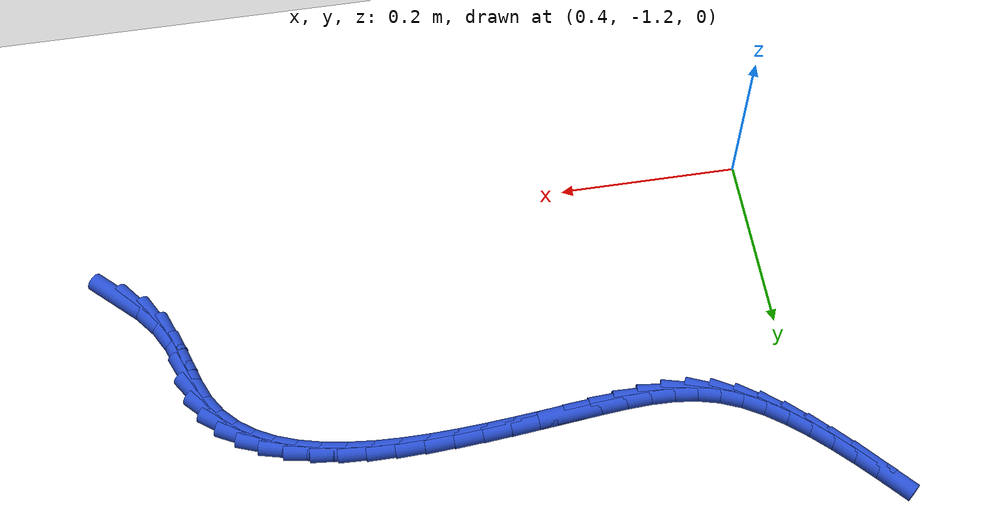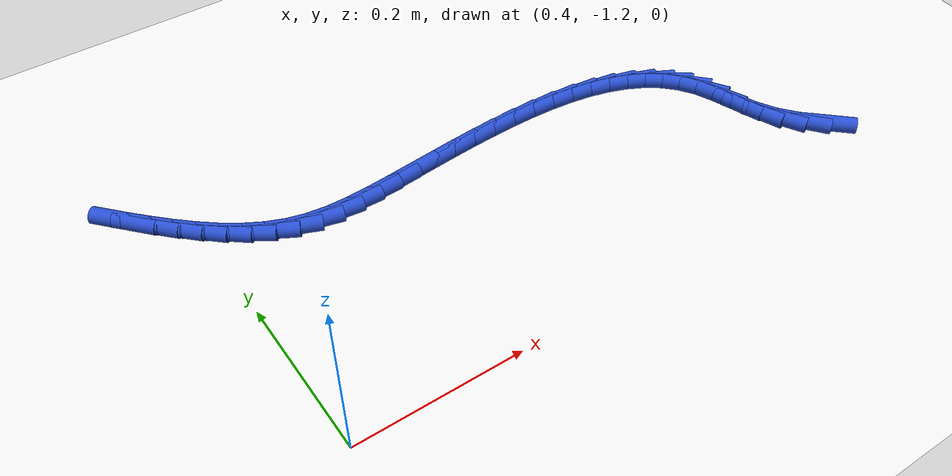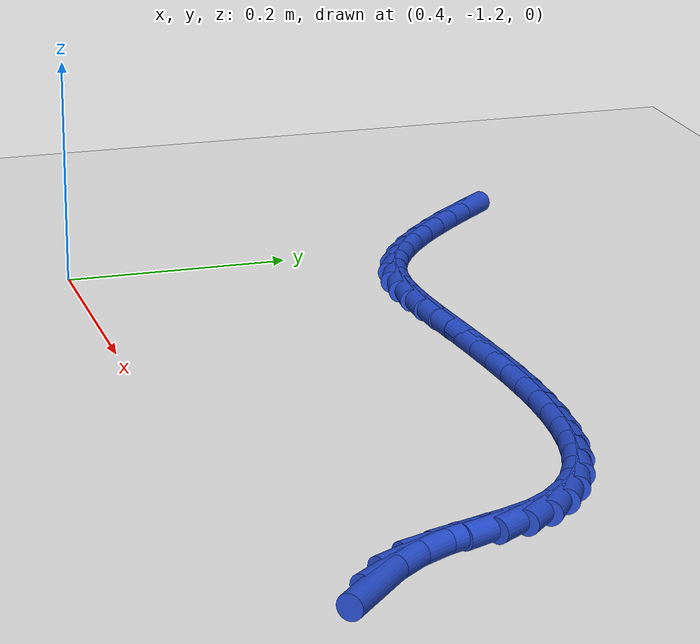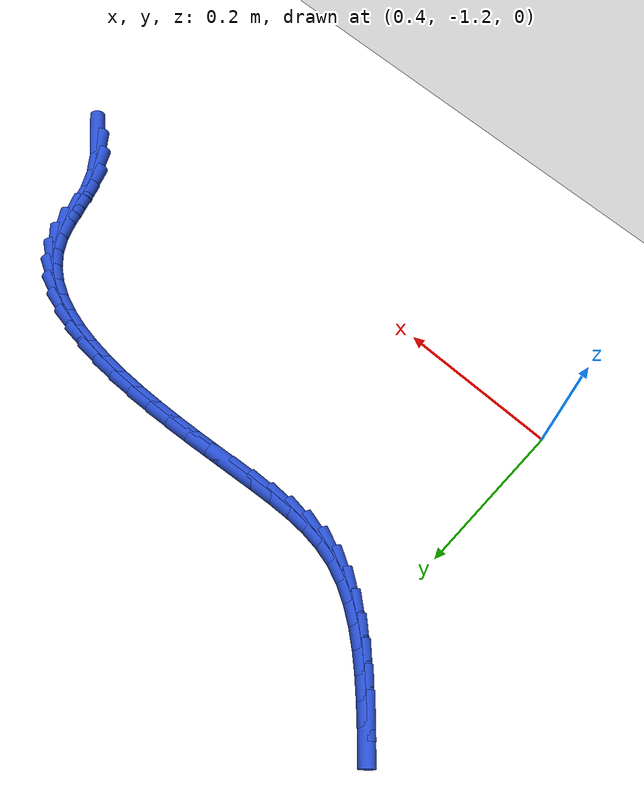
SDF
<sdf version="1.6">
 <world name="default">
  <model name="ground_plane">
   <static>1</static>
   <link name="link">
    <collision name="collision">
     <geometry><plane><normal>0 0 1</normal><size>100 100</size></plane></geometry>
     <surface><friction><ode><mu>100</mu><mu2>50</mu2></ode></friction></surface>
    </collision>
    <visual name="visual">
     <cast_shadows>0</cast_shadows>
     <geometry><plane><normal>0 0 1</normal><size>100 100</size></plane></geometry>
     <material>
      <script><uri>file://media/materials/scripts/gazebo.material</uri><name>Gazebo/WhiteGlow</name></script>
     </material>
    </visual>
   </link>
  </model>
  <model name="line">
   <link name="link_212">
    <pose>1.1027837674658145 -1.1336089583732658 0.01 0 1.57 -0.7572416969547643</pose>
    <collision name="collision">
     <geometry><cylinder><radius>0.01</radius><length>0.08</length></cylinder></geometry>
    </collision>
    <visual name="visual">
     <material>
      <script><name>Gazebo/Blue</name><uri>file://media/materials/scripts/gazebo.material</uri></script>
     </material>
     <geometry><cylinder><radius>0.01</radius><length>0.08</length></cylinder></geometry>
    </visual>
   </link>
   <link name="link_213">
    <pose>1.0814102770759462 -1.1134064117275366 0.01 0 1.57 -0.903202146917525</pose>
    <collision name="collision">
     <geometry><cylinder><radius>0.01</radius><length>0.08</length></cylinder></geometry>
    </collision>
    <visual name="visual">
     <material>
      <script><name>Gazebo/Blue</name><uri>file://media/materials/scripts/gazebo.material</uri></script>
     </material>
     <geometry><cylinder><radius>0.01</radius><length>0.08</length></cylinder></geometry>
    </visual>
   </link>
   <link name="link_214">
    <pose>1.0638935593261707 -1.0911868235654556 0.01 0 1.57 -1.0722409563894877</pose>
    <collision name="collision">
     <geometry><cylinder><radius>0.01</radius><length>0.08</length></cylinder></geometry>
    </collision>
    <visual name="visual">
     <material>
      <script><name>Gazebo/Blue</name><uri>file://media/materials/scripts/gazebo.material</uri></script>
     </material>
     <geometry><cylinder><radius>0.01</radius><length>0.08</length></cylinder></geometry>
    </visual>
   </link>
   <link name="link_215">
    <pose>1.0507856807530205 -1.0671104095838313 0.01 0 1.57 -1.2094840260653625</pose>
    <collision name="collision">
     <geometry><cylinder><radius>0.01</radius><length>0.08</length></cylinder></geometry>
    </collision>
    <visual name="visual">
     <material>
      <script><name>Gazebo/Blue</name><uri>file://media/materials/scripts/gazebo.material</uri></script>
     </material>
     <geometry><cylinder><radius>0.01</radius><length>0.08</length></cylinder></geometry>
    </visual>
   </link>
   <link name="link_216">
    <pose>1.041281516574572 -1.0419605857556045 0.01 0 1.57 -1.2457691125812917</pose>
    <collision name="collision">
     <geometry><cylinder><radius>0.01</radius><length>0.08</length></cylinder></geometry>
    </collision>
    <visual name="visual">
     <material>
      <script><name>Gazebo/Blue</name><uri>file://media/materials/scripts/gazebo.material</uri></script>
     </material>
     <geometry><cylinder><radius>0.01</radius><length>0.08</length></cylinder></geometry>
    </visual>
   </link>
   <link name="link_217">
    <pose>1.0329590462954035 -1.0172632203825969 0.01 0 1.57 -1.1682659880433406</pose>
    <collision name="collision">
     <geometry><cylinder><radius>0.01</radius><length>0.08</length></cylinder></geometry>
    </collision>
    <visual name="visual">
     <material>
      <script><name>Gazebo/Blue</name><uri>file://media/materials/scripts/gazebo.material</uri></script>
     </material>
     <geometry><cylinder><radius>0.01</radius><length>0.08</length></cylinder></geometry>
    </visual>
   </link>
   <link name="link_218">
    <pose>1.023303698659559 -0.9945863243268531 0.01 0 1.57 -0.9919546070535967</pose>
    <collision name="collision">
     <geometry><cylinder><radius>0.01</radius><length>0.08</length></cylinder></geometry>
    </collision>
    <visual name="visual">
     <material>
      <script><name>Gazebo/Blue</name><uri>file://media/materials/scripts/gazebo.material</uri></script>
     </material>
     <geometry><cylinder><radius>0.01</radius><length>0.08</length></cylinder></geometry>
    </visual>
   </link>
   <link name="link_219">
    <pose>1.0105260662789688 -0.9750341375935031 0.01 0 1.57 -0.8036828506721143</pose>
    <collision name="collision">
     <geometry><cylinder><radius>0.01</radius><length>0.08</length></cylinder></geometry>
    </collision>
    <visual name="visual">
     <material>
      <script><name>Gazebo/Blue</name><uri>file://media/materials/scripts/gazebo.material</uri></script>
     </material>
     <geometry><cylinder><radius>0.01</radius><length>0.08</length></cylinder></geometry>
    </visual>
   </link>
   <link name="link_220">
    <pose>0.9946408379751941 -0.9585571096002767 0.01 0 1.57 -0.6297104133593998</pose>
    <collision name="collision">
     <geometry><cylinder><radius>0.01</radius><length>0.08</length></cylinder></geometry>
    </collision>
    <visual name="visual">
     <material>
      <script><name>Gazebo/Blue</name><uri>file://media/materials/scripts/gazebo.material</uri></script>
     </material>
     <geometry><cylinder><radius>0.01</radius><length>0.08</length></cylinder></geometry>
    </visual>
   </link>
   <link name="link_221">
    <pose>0.9759385391568347 -0.9449292814025979 0.01 0 1.57 -0.4782424865893682</pose>
    <collision name="collision">
     <geometry><cylinder><radius>0.01</radius><length>0.08</length></cylinder></geometry>
    </collision>
    <visual name="visual">
     <material>
      <script><name>Gazebo/Blue</name><uri>file://media/materials/scripts/gazebo.material</uri></script>
     </material>
     <geometry><cylinder><radius>0.01</radius><length>0.08</length></cylinder></geometry>
    </visual>
   </link>
   <link name="link_222">
    <pose>0.9547096952324899 -0.9339246940558891 0.01 0 1.57 -0.3515771004076572</pose>
    <collision name="collision">
     <geometry><cylinder><radius>0.01</radius><length>0.08</length></cylinder></geometry>
    </collision>
    <visual name="visual">
     <material>
      <script><name>Gazebo/Blue</name><uri>file://media/materials/scripts/gazebo.material</uri></script>
     </material>
     <geometry><cylinder><radius>0.01</radius><length>0.08</length></cylinder></geometry>
    </visual>
   </link>
   <link name="link_223">
    <pose>0.9312448316107593 -0.9253173886155737 0.01 0 1.57 -0.24806507065243175</pose>
    <collision name="collision">
     <geometry><cylinder><radius>0.01</radius><length>0.08</length></cylinder></geometry>
    </collision>
    <visual name="visual">
     <material>
      <script><name>Gazebo/Blue</name><uri>file://media/materials/scripts/gazebo.material</uri></script>
     </material>
     <geometry><cylinder><radius>0.01</radius><length>0.08</length></cylinder></geometry>
    </visual>
   </link>
   <link name="link_224">
    <pose>0.9058344737002426 -0.9188814061370748 0.01 0 1.57 -0.1644199254849896</pose>
    <collision name="collision">
     <geometry><cylinder><radius>0.01</radius><length>0.08</length></cylinder></geometry>
    </collision>
    <visual name="visual">
     <material>
      <script><name>Gazebo/Blue</name><uri>file://media/materials/scripts/gazebo.material</uri></script>
     </material>
     <geometry><cylinder><radius>0.01</radius><length>0.08</length></cylinder></geometry>
    </visual>
   </link>
   <link name="link_225">
    <pose>0.87876914690954 -0.9143907876758157 0.01 0 1.57 -0.09716878280350112</pose>
    <collision name="collision">
     <geometry><cylinder><radius>0.01</radius><length>0.08</length></cylinder></geometry>
    </collision>
    <visual name="visual">
     <material>
      <script><name>Gazebo/Blue</name><uri>file://media/materials/scripts/gazebo.material</uri></script>
     </material>
     <geometry><cylinder><radius>0.01</radius><length>0.08</length></cylinder></geometry>
    </visual>
   </link>
   <link name="link_226">
    <pose>0.8503393766472495 -0.9116195742872194 0.01 0 1.57 -0.04328168277026096</pose>
    <collision name="collision">
     <geometry><cylinder><radius>0.01</radius><length>0.08</length></cylinder></geometry>
    </collision>
    <visual name="visual">
     <material>
      <script><name>Gazebo/Blue</name><uri>file://media/materials/scripts/gazebo.material</uri></script>
     </material>
     <geometry><cylinder><radius>0.01</radius><length>0.08</length></cylinder></geometry>
    </visual>
   </link>
   <link name="link_227">
    <pose>0.8208356883219725 -0.9103418070267089 0.01 0 1.57 -0.00033942117475776936</pose>
    <collision name="collision">
     <geometry><cylinder><radius>0.01</radius><length>0.08</length></cylinder></geometry>
    </collision>
    <visual name="visual">
     <material>
      <script><name>Gazebo/Blue</name><uri>file://media/materials/scripts/gazebo.material</uri></script>
     </material>
     <geometry><cylinder><radius>0.01</radius><length>0.08</length></cylinder></geometry>
    </visual>
   </link>
   <link name="link_228">
    <pose>0.7905486073423085 -0.910331526949708 0.01 0 1.57 0.0334913675482747</pose>
    <collision name="collision">
     <geometry><cylinder><radius>0.01</radius><length>0.08</length></cylinder></geometry>
    </collision>
    <visual name="visual">
     <material>
      <script><name>Gazebo/Blue</name><uri>file://media/materials/scripts/gazebo.material</uri></script>
     </material>
     <geometry><cylinder><radius>0.01</radius><length>0.08</length></cylinder></geometry>
    </visual>
   </link>
   <link name="link_229">
    <pose>0.7597686591168562 -0.9113627751116388 0.01 0 1.57 0.05953835972593</pose>
    <collision name="collision">
     <geometry><cylinder><radius>0.01</radius><length>0.08</length></cylinder></geometry>
    </collision>
    <visual name="visual">
     <material>
      <script><name>Gazebo/Blue</name><uri>file://media/materials/scripts/gazebo.material</uri></script>
     </material>
     <geometry><cylinder><radius>0.01</radius><length>0.08</length></cylinder></geometry>
    </visual>
   </link>
   <link name="link_230">
    <pose>0.7287863690542161 -0.9132095925679253 0.01 0 1.57 0.07870094730861965</pose>
    <collision name="collision">
     <geometry><cylinder><radius>0.01</radius><length>0.08</length></cylinder></geometry>
    </collision>
    <visual name="visual">
     <material>
      <script><name>Gazebo/Blue</name><uri>file://media/materials/scripts/gazebo.material</uri></script>
     </material>
     <geometry><cylinder><radius>0.01</radius><length>0.08</length></cylinder></geometry>
    </visual>
   </link>
   <link name="link_231">
    <pose>0.6978922625629872 -0.9156460203739901 0.01 0 1.57 0.09150331263685604</pose>
    <collision name="collision">
     <geometry><cylinder><radius>0.01</radius><length>0.08</length></cylinder></geometry>
    </collision>
    <visual name="visual">
     <material>
      <script><name>Gazebo/Blue</name><uri>file://media/materials/scripts/gazebo.material</uri></script>
     </material>
     <geometry><cylinder><radius>0.01</radius><length>0.08</length></cylinder></geometry>
    </visual>
   </link>
   <link name="link_232">
    <pose>0.6673768650517697 -0.9184460995852568 0.01 0 1.57 0.0981144157475309</pose>
    <collision name="collision">
     <geometry><cylinder><radius>0.01</radius><length>0.08</length></cylinder></geometry>
    </collision>
    <visual name="visual">
     <material>
      <script><name>Gazebo/Blue</name><uri>file://media/materials/scripts/gazebo.material</uri></script>
     </material>
     <geometry><cylinder><radius>0.01</radius><length>0.08</length></cylinder></geometry>
    </visual>
   </link>
   <link name="link_233">
    <pose>0.6375307019291625 -0.9213838712571482 0.01 0 1.57 0.098039731902374</pose>
    <collision name="collision">
     <geometry><cylinder><radius>0.01</radius><length>0.08</length></cylinder></geometry>
    </collision>
    <visual name="visual">
     <material>
      <script><name>Gazebo/Blue</name><uri>file://media/materials/scripts/gazebo.material</uri></script>
     </material>
     <geometry><cylinder><radius>0.01</radius><length>0.08</length></cylinder></geometry>
    </visual>
   </link>
   <link name="link_234">
    <pose>0.6086380074067865 -0.9242256138650728 0.01 0 1.57 0.08314567726442772</pose>
    <collision name="collision">
     <geometry><cylinder><radius>0.01</radius><length>0.08</length></cylinder></geometry>
    </collision>
    <visual name="visual">
     <material>
      <script><name>Gazebo/Blue</name><uri>file://media/materials/scripts/gazebo.material</uri></script>
     </material>
     <geometry><cylinder><radius>0.01</radius><length>0.08</length></cylinder></geometry>
    </visual>
   </link>
   <link name="link_235">
    <pose>0.5808256494371992 -0.9265434348575589 0.01 0 1.57 0.04340705607874479</pose>
    <collision name="collision">
     <geometry><cylinder><radius>0.01</radius><length>0.08</length></cylinder></geometry>
    </collision>
    <visual name="visual">
     <material>
      <script><name>Gazebo/Blue</name><uri>file://media/materials/scripts/gazebo.material</uri></script>
     </material>
     <geometry><cylinder><radius>0.01</radius><length>0.08</length></cylinder></geometry>
    </visual>
   </link>
   <link name="link_236">
    <pose>0.5540557521616867 -0.9277061676446193 0.01 0 1.57 -0.024559699058842584</pose>
    <collision name="collision">
     <geometry><cylinder><radius>0.01</radius><length>0.08</length></cylinder></geometry>
    </collision>
    <visual name="visual">
     <material>
      <script><name>Gazebo/Blue</name><uri>file://media/materials/scripts/gazebo.material</uri></script>
     </material>
     <geometry><cylinder><radius>0.01</radius><length>0.08</length></cylinder></geometry>
    </visual>
   </link>
   <link name="link_237">
    <pose>0.5282826720431332 -0.9270730612558482 0.01 0 1.57 -0.12304410593209215</pose>
    <collision name="collision">
     <geometry><cylinder><radius>0.01</radius><length>0.08</length></cylinder></geometry>
    </collision>
    <visual name="visual">
     <material>
      <script><name>Gazebo/Blue</name><uri>file://media/materials/scripts/gazebo.material</uri></script>
     </material>
     <geometry><cylinder><radius>0.01</radius><length>0.08</length></cylinder></geometry>
    </visual>
   </link>
   <link name="link_238">
    <pose>0.5034607655444223 -0.9240033647208393 0.01 0 1.57 -0.2515698495039997</pose>
    <collision name="collision">
     <geometry><cylinder><radius>0.01</radius><length>0.08</length></cylinder></geometry>
    </collision>
    <visual name="visual">
     <material>
      <script><name>Gazebo/Blue</name><uri>file://media/materials/scripts/gazebo.material</uri></script>
     </material>
     <geometry><cylinder><radius>0.01</radius><length>0.08</length></cylinder></geometry>
    </visual>
   </link>
   <link name="link_239">
    <pose>0.4795443905870454 -0.9178565024885298 0.01 0 1.57 -0.394755554663865</pose>
    <collision name="collision">
     <geometry><cylinder><radius>0.01</radius><length>0.08</length></cylinder></geometry>
    </collision>
    <visual name="visual">
     <material>
      <script><name>Gazebo/Blue</name><uri>file://media/materials/scripts/gazebo.material</uri></script>
     </material>
     <geometry><cylinder><radius>0.01</radius><length>0.08</length></cylinder></geometry>
    </visual>
   </link>
   <link name="link_240">
    <pose>0.45649006362830785 -0.908251495184701 0.01 0 1.57 -0.517838514848339</pose>
    <collision name="collision">
     <geometry><cylinder><radius>0.01</radius><length>0.08</length></cylinder></geometry>
    </collision>
    <visual name="visual">
     <material>
      <script><name>Gazebo/Blue</name><uri>file://media/materials/scripts/gazebo.material</uri></script>
     </material>
     <geometry><cylinder><radius>0.01</radius><length>0.08</length></cylinder></geometry>
    </visual>
   </link>
   <link name="link_241">
    <pose>0.43426078862202994 -0.8955875818042733 0.01 0 1.57 -0.6160152796376119</pose>
    <collision name="collision">
     <geometry><cylinder><radius>0.01</radius><length>0.08</length></cylinder></geometry>
    </collision>
    <visual name="visual">
     <material>
      <script><name>Gazebo/Blue</name><uri>file://media/materials/scripts/gazebo.material</uri></script>
     </material>
     <geometry><cylinder><radius>0.01</radius><length>0.08</length></cylinder></geometry>
    </visual>
   </link>
   <link name="link_242">
    <pose>0.4128207833157586 -0.8804099781700282 0.01 0 1.57 -0.692088188363708</pose>
    <collision name="collision">
     <geometry><cylinder><radius>0.01</radius><length>0.08</length></cylinder></geometry>
    </collision>
    <visual name="visual">
     <material>
      <script><name>Gazebo/Blue</name><uri>file://media/materials/scripts/gazebo.material</uri></script>
     </material>
     <geometry><cylinder><radius>0.01</radius><length>0.08</length></cylinder></geometry>
    </visual>
   </link>
   <link name="link_243">
    <pose>0.3921342654570401 -0.8632639001047464 0.01 0 1.57 -0.7491000709122112</pose>
    <collision name="collision">
     <geometry><cylinder><radius>0.01</radius><length>0.08</length></cylinder></geometry>
    </collision>
    <visual name="visual">
     <material>
      <script><name>Gazebo/Blue</name><uri>file://media/materials/scripts/gazebo.material</uri></script>
     </material>
     <geometry><cylinder><radius>0.01</radius><length>0.08</length></cylinder></geometry>
    </visual>
   </link>
   <link name="link_244">
    <pose>0.372165452793423 -0.8446945634312112 0.01 0 1.57 -0.7895414923681475</pose>
    <collision name="collision">
     <geometry><cylinder><radius>0.01</radius><length>0.08</length></cylinder></geometry>
    </collision>
    <visual name="visual">
     <material>
      <script><name>Gazebo/Blue</name><uri>file://media/materials/scripts/gazebo.material</uri></script>
     </material>
     <geometry><cylinder><radius>0.01</radius><length>0.08</length></cylinder></geometry>
    </visual>
   </link>
   <link name="link_245">
    <pose>0.35287856307245347 -0.8252471839722032 0.01 0 1.57 -0.816816959750469</pose>
    <collision name="collision">
     <geometry><cylinder><radius>0.01</radius><length>0.08</length></cylinder></geometry>
    </collision>
    <visual name="visual">
     <material>
      <script><name>Gazebo/Blue</name><uri>file://media/materials/scripts/gazebo.material</uri></script>
     </material>
     <geometry><cylinder><radius>0.01</radius><length>0.08</length></cylinder></geometry>
    </visual>
   </link>
   <link name="link_246">
    <pose>0.33423992121617835 -0.8053989321980788 0.01 0 1.57 -0.8407722932149859</pose>
    <collision name="collision">
     <geometry><cylinder><radius>0.01</radius><length>0.08</length></cylinder></geometry>
    </collision>
    <visual name="visual">
     <material>
      <script><name>Gazebo/Blue</name><uri>file://media/materials/scripts/gazebo.material</uri></script>
     </material>
     <geometry><cylinder><radius>0.01</radius><length>0.08</length></cylinder></geometry>
    </visual>
   </link>
  </model>
 </world>
</sdf>
